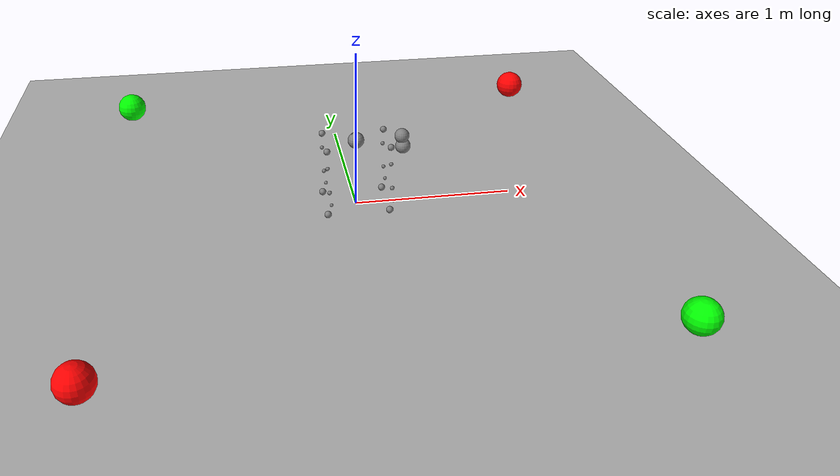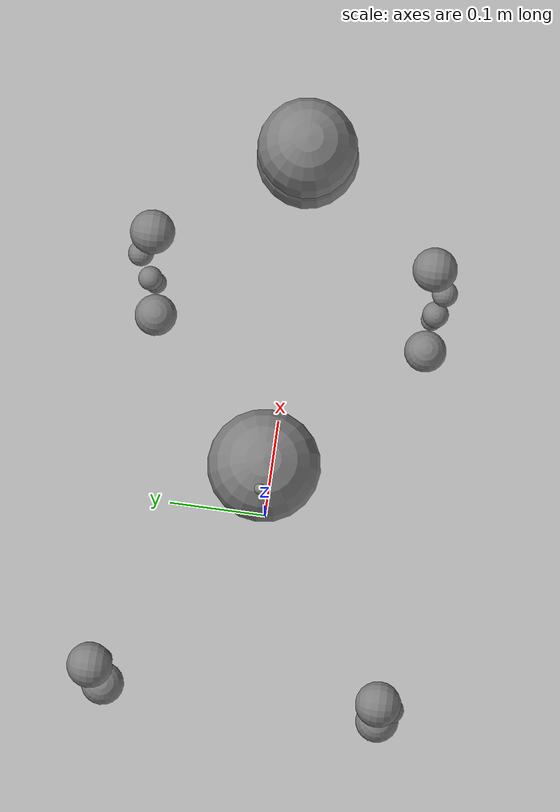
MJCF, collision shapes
<mujoco model="go2_reacher_environment">
  <compiler angle="radian" meshdir="xmls/assets" autolimits="true"/>

  <option cone="elliptic" impratio="100"/>

  <default>
    <default class="go2">
      <geom friction="0.6" margin="0.001" condim="1"/>
      <joint axis="0 1 0" damping="2" armature="0.01" frictionloss="0.2"/>
      <motor ctrlrange="-23.7 23.7"/>
      <default class="abduction">
        <joint axis="1 0 0" range="-1.0472 1.0472"/>
      </default>
      <default class="hip">
        <default class="front_hip">
          <joint range="-1.5708 3.4907"/>
        </default>
        <default class="back_hip">
          <joint range="-0.5236 4.5379"/>
        </default>
      </default>
      <default class="knee">
        <joint range="-2.7227 -0.83776"/>
        <motor ctrlrange="-45.43 45.43"/>
      </default>
      <default class="visual">
        <geom type="mesh" contype="0" conaffinity="0" group="2"/>
      </default>
      <default class="collision">
        <geom group="3"/>
        <default class="foot">
          <geom size="0.022" pos="-0.002 0 -0.213" priority="1" solimp="0.015 1 0.022" condim="6"
            friction="0.8 0.02 0.01"/>
        </default>
      </default>
    </default>
  </default>

  <asset>
    <material name="metal" rgba=".9 .95 .95 1"/>
    <material name="black" rgba="0 0 0 1"/>
    <material name="white" rgba="1 1 1 1"/>
    <material name="gray" rgba="0.671705 0.692426 0.774270 1"/>
    <material name="red_material" rgba="1 0 0 1"/>
    <material name="green_material" rgba="0 1 0 1"/>

    <texture type="skybox" builtin="gradient" width="512" height="512" rgb1=".4 .6 .8" rgb2="0 0 0"/>
    <texture name="texgeom" type="cube" builtin="flat" mark="cross" width="128" height="128" rgb1="0.6 0.6 0.6" rgb2="0.6 0.6 0.6" markrgb="1 1 1"/>
    <texture name="texplane" type="2d" builtin="checker" rgb1=".4 .4 .4" rgb2=".6 .6 .6" width="512" height="512"/>
    <material name="MatPlane" reflectance="0.3" texture="texplane" texrepeat="1 1" texuniform="true" rgba=".7 .7 .7 1"/>

    <!-- Mesh files are referenced from the go2.xml. In a real setup, these would need to be in the 'assets' directory -->
    <mesh file="base_0.obj"/>
    <mesh file="base_1.obj"/>
    <mesh file="base_2.obj"/>
    <mesh file="base_3.obj"/>
    <mesh file="base_4.obj"/>
    <mesh file="hip_0.obj"/>
    <mesh file="hip_1.obj"/>
    <mesh file="thigh_0.obj"/>
    <mesh file="thigh_1.obj"/>
    <mesh file="thigh_mirror_0.obj"/>
    <mesh file="thigh_mirror_1.obj"/>
    <mesh file="calf_0.obj"/>
    <mesh file="calf_1.obj"/>
    <mesh file="calf_mirror_0.obj"/>
    <mesh file="calf_mirror_1.obj"/>
    <mesh file="foot.obj"/>
  </asset>

  <worldbody>
    <light directional="true" diffuse=".8 .8 .8" pos="0 0 10" dir="0 0 -10"/>
    <geom name="floor" type="plane" size="3 3 .5" material="MatPlane" rgba=".7 .7 .7 1"/>

    <!-- Go2 Robot definition (copied from go2.xml) -->
    <body name="go2_base" pos="0 0 0.445" childclass="go2">
      <inertial pos="0.021112 0 -0.005366" quat="-0.000543471 0.713435 -0.00173769 0.700719" mass="6.921"
        diaginertia="0.107027 0.0980771 0.0244531"/>
      <freejoint/>
      <geom mesh="base_0" material="black" class="visual"/>
      <geom mesh="base_1" material="black" class="visual"/>
      <geom mesh="base_2" material="black" class="visual"/>
      <geom mesh="base_3" material="white" class="visual"/>
      <geom mesh="base_4" material="gray" class="visual"/>
      <!-- Changed collision types to sphere -->
      <geom size="0.05" type="sphere" class="collision"/> <!-- Original: box size="0.1881 0.04675 0.057" -->
      <geom size="0.045" pos="0.285 0 0.01" type="sphere" class="collision"/> <!-- Original: cylinder size="0.05 0.045" -->
      <geom size="0.047" pos="0.293 0 -0.06" class="collision"/>
      <site name="imu" pos="-0.02557 0 0.04232"/>
      <body name="FL_hip" pos="0.1934 0.0465 0">
        <inertial pos="-0.0054 0.00194 -0.000105" quat="0.497014 0.499245 0.505462 0.498237" mass="0.678"
          diaginertia="0.00088403 0.000596003 0.000479967"/>
        <joint name="FL_hip_joint" class="abduction"/>
        <geom mesh="hip_0" material="metal" class="visual"/>
        <geom mesh="hip_1" material="gray" class="visual"/>
        <geom size="0.02" pos="0 0.08 0" quat="1 1 0 0" type="sphere" class="collision"/> <!-- Original: cylinder size="0.046 0.02" -->
        <body name="FL_thigh" pos="0 0.0955 0">
          <inertial pos="-0.00374 -0.0223 -0.0327" quat="0.829533 0.0847635 -0.0200632 0.551623" mass="1.152"
            diaginertia="0.00594973 0.00584149 0.000878787"/>
          <joint name="FL_thigh_joint" class="front_hip"/>
          <geom mesh="thigh_0" material="metal" class="visual"/>
          <geom mesh="thigh_1" material="gray" class="visual"/>
          <geom size="0.012" pos="0 0 -0.1065" quat="0.707107 0 0.707107 0" type="sphere" class="collision"/> <!-- Original: box size="0.1065 0.01225 0.017" -->
          <body name="FL_calf" pos="0 0 -0.213">
            <inertial pos="0.00629595 -0.000622121 -0.141417" quat="0.710672 0.00154099 -0.00450087 0.703508"
              mass="0.241352" diaginertia="0.0014901 0.00146356 5.31397e-05"/>
            <joint name="FL_calf_joint" class="knee"/>
            <geom mesh="calf_0" material="gray" class="visual"/>
            <geom mesh="calf_1" material="black" class="visual"/>
            <geom size="0.012" pos="0.008 0 -0.06" quat="0.994493 0 -0.104807 0" type="sphere" class="collision"/> <!-- Original: cylinder size="0.012 0.06" -->
            <geom size="0.011" pos="0.02 0 -0.148" quat="0.999688 0 0.0249974 0" type="sphere" class="collision"/> <!-- Original: cylinder size="0.011 0.0325" -->
            <geom pos="0 0 -0.213" mesh="foot" class="visual" material="black"/>
            <geom name="FL" class="foot"/>
          </body>
        </body>
      </body>
      <body name="FR_hip" pos="0.1934 -0.0465 0">
        <inertial pos="-0.0054 -0.00194 -0.000105" quat="0.498237 0.505462 0.499245 0.497014" mass="0.678"
          diaginertia="0.00088403 0.000596003 0.000479967"/>
        <joint name="FR_hip_joint" class="abduction"/>
        <geom mesh="hip_0" material="metal" class="visual" quat="4.63268e-05 1 0 0"/>
        <geom mesh="hip_1" material="gray" class="visual" quat="4.63268e-05 1 0 0"/>
        <geom size="0.02" pos="0 -0.08 0" quat="0.707107 0.707107 0 0" type="sphere" class="collision"/> <!-- Original: cylinder size="0.046 0.02" -->
        <body name="FR_thigh" pos="0 -0.0955 0">
          <inertial pos="-0.00374 0.0223 -0.0327" quat="0.551623 -0.0200632 0.0847635 0.829533" mass="1.152"
            diaginertia="0.00594973 0.00584149 0.000878787"/>
          <joint name="FR_thigh_joint" class="front_hip"/>
          <geom mesh="thigh_mirror_0" material="metal" class="visual"/>
          <geom mesh="thigh_mirror_1" material="gray" class="visual"/>
          <geom size="0.012" pos="0 0 -0.1065" quat="0.707107 0 0.707107 0" type="sphere" class="collision"/> <!-- Original: box size="0.1065 0.01225 0.017" -->
          <body name="FR_calf" pos="0 0 -0.213">
            <inertial pos="0.00629595 0.000622121 -0.141417" quat="0.703508 -0.00450087 0.00154099 0.710672"
              mass="0.241352" diaginertia="0.0014901 0.00146356 5.31397e-05"/>
            <joint name="FR_calf_joint" class="knee"/>
            <geom mesh="calf_mirror_0" material="gray" class="visual"/>
            <geom mesh="calf_mirror_1" material="black" class="visual"/>
            <geom size="0.013" pos="0.01 0 -0.06" quat="0.995004 0 -0.0998334 0" type="sphere" class="collision"/> <!-- Original: cylinder size="0.013 0.06" -->
            <geom size="0.011" pos="0.02 0 -0.148" quat="0.999688 0 0.0249974 0" type="sphere" class="collision"/> <!-- Original: cylinder size="0.011 0.0325" -->
            <geom pos="0 0 -0.213" mesh="foot" class="visual" material="black"/>
            <geom name="FR" class="foot"/>
          </body>
        </body>
      </body>
      <body name="RL_hip" pos="-0.1934 0.0465 0">
        <inertial pos="0.0054 0.00194 -0.000105" quat="0.505462 0.498237 0.497014 0.499245" mass="0.678"
          diaginertia="0.00088403 0.000596003 0.000479967"/>
        <joint name="RL_hip_joint" class="abduction"/>
        <geom mesh="hip_0" material="metal" class="visual" quat="4.63268e-05 0 1 0"/>
        <geom mesh="hip_1" material="gray" class="visual" quat="4.63268e-05 0 1 0"/>
        <geom size="0.02" pos="0 0.08 0" quat="0.707107 0.707107 0 0" type="sphere" class="collision"/> <!-- Original: cylinder size="0.046 0.02" -->
        <body name="RL_thigh" pos="0 0.0955 0">
          <inertial pos="-0.00374 -0.0223 -0.0327" quat="0.829533 0.0847635 -0.0200632 0.551623" mass="1.152"
            diaginertia="0.00594973 0.00584149 0.000878787"/>
          <joint name="RL_thigh_joint" class="back_hip"/>
          <geom mesh="thigh_0" material="metal" class="visual"/>
          <geom mesh="thigh_1" material="gray" class="visual"/>
          <geom size="0.012" pos="0 0 -0.1065" quat="0.707107 0 0.707107 0" type="sphere" class="collision"/> <!-- Original: box size="0.1065 0.01225 0.017" -->
          <body name="RL_calf" pos="0 0 -0.213">
            <inertial pos="0.00629595 -0.000622121 -0.141417" quat="0.710672 0.00154099 -0.00450087 0.703508"
              mass="0.241352" diaginertia="0.0014901 0.00146356 5.31397e-05"/>
            <joint name="RL_calf_joint" class="knee"/>
            <geom mesh="calf_0" material="gray" class="visual"/>
            <geom mesh="calf_1" material="black" class="visual"/>
            <geom size="0.013" pos="0.01 0 -0.06" quat="0.995004 0 -0.0998334 0" type="sphere" class="collision"/> <!-- Original: cylinder size="0.013 0.06" -->
            <geom size="0.011" pos="0.02 0 -0.148" quat="0.999688 0 0.0249974 0" type="sphere" class="collision"/> <!-- Original: cylinder size="0.011 0.0325" -->
            <geom pos="0 0 -0.213" mesh="foot" class="visual" material="black"/>
            <geom name="RL" class="foot"/>
          </body>
        </body>
      </body>
      <body name="RR_hip" pos="-0.1934 -0.0465 0">
        <inertial pos="0.0054 -0.00194 -0.000105" quat="0.499245 0.497014 0.498237 0.505462" mass="0.678"
          diaginertia="0.00088403 0.000596003 0.000479967"/>
        <joint name="RR_hip_joint" class="abduction"/>
        <geom mesh="hip_0" material="metal" class="visual" quat="2.14617e-09 4.63268e-05 4.63268e-05 -1"/>
        <geom mesh="hip_1" material="gray" class="visual" quat="2.14617e-09 4.63268e-05 4.63268e-05 -1"/>
        <geom size="0.02" pos="0 -0.08 0" quat="0.707107 0.707107 0 0" type="sphere" class="collision"/> <!-- Original: cylinder size="0.046 0.02" -->
        <body name="RR_thigh" pos="0 -0.0955 0">
          <inertial pos="-0.00374 0.0223 -0.0327" quat="0.551623 -0.0200632 0.0847635 0.829533" mass="1.152"
            diaginertia="0.00594973 0.00584149 0.000878787"/>
          <joint name="RR_thigh_joint" class="back_hip"/>
          <geom mesh="thigh_mirror_0" material="metal" class="visual"/>
          <geom mesh="thigh_mirror_1" material="gray" class="visual"/>
          <geom size="0.012" pos="0 0 -0.1065" quat="0.707107 0 0.707107 0" type="sphere" class="collision"/> <!-- Original: box size="0.1065 0.01225 0.017" -->
          <body name="RR_calf" pos="0 0 -0.213">
            <inertial pos="0.00629595 0.000622121 -0.141417" quat="0.703508 -0.00450087 0.00154099 0.710672"
              mass="0.241352" diaginertia="0.0014901 0.00146356 5.31397e-05"/>
            <joint name="RR_calf_joint" class="knee"/>
            <geom mesh="calf_mirror_0" material="gray" class="visual"/>
            <geom mesh="calf_mirror_1" material="black" class="visual"/>
            <geom size="0.013" pos="0.01 0 -0.06" quat="0.995004 0 -0.0998334 0" type="sphere" class="collision"/> <!-- Original: cylinder size="0.013 0.06" -->
            <geom size="0.011" pos="0.02 0 -0.148" quat="0.999688 0 0.0249974 0" type="sphere" class="collision"/> <!-- Original: cylinder size="0.011 0.0325" -->
            <geom pos="0 0 -0.213" mesh="foot" class="visual" material="black"/>
            <geom name="RR" class="foot"/>
          </body>
        </body>
      </body>
    </body>

    <!-- Red Objects (Reward) -->
    <body name="red_object_1" pos="1.5 1.5 0.1">
      <geom name="red_sphere_1" type="sphere" size="0.1" material="red_material"/>
    </body>
    <body name="red_object_2" pos="-1.5 -1.5 0.1">
      <geom name="red_box_1" type="sphere" size="0.1" material="red_material"/> <!-- Changed type to sphere -->
    </body>

    <!-- Green Objects (Penalty) -->
    <body name="green_object_1" pos="1.5 -1.5 0.1">
      <geom name="green_sphere_1" type="sphere" size="0.1" material="green_material"/>
    </body>
    <body name="green_object_2" pos="-1.5 1.5 0.1">
      <geom name="green_box_1" type="sphere" size="0.1" material="green_material"/> <!-- Changed type to sphere -->
    </body>

  </worldbody>

  <actuator>
    <motor class="abduction" name="FL_hip" joint="FL_hip_joint"/>
    <motor class="hip" name="FL_thigh" joint="FL_thigh_joint"/>
    <motor class="knee" name="FL_calf" joint="FL_calf_joint"/>
    <motor class="abduction" name="FR_hip" joint="FR_hip_joint"/>
    <motor class="hip" name="FR_thigh" joint="FR_thigh_joint"/>
    <motor class="knee" name="FR_calf" joint="FR_calf_joint"/>
    <motor class="abduction" name="RL_hip" joint="RL_hip_joint"/>
    <motor class="hip" name="RL_thigh" joint="RL_thigh_joint"/>
    <motor class="knee" name="RL_calf" joint="RL_calf_joint"/>
    <motor class="abduction" name="RR_hip" joint="RR_hip_joint"/>
    <motor class="hip" name="RR_thigh" joint="RR_thigh_joint"/>
    <motor class="knee" name="RR_calf" joint="RR_calf_joint"/>
  </actuator>

  <keyframe>
    <key name="home" qpos="0 0 0.27 1 0 0 0 0 0.9 -1.8 0 0.9 -1.8 0 0.9 -1.8 0 0.9 -1.8"
      ctrl="0 0.9 -1.8 0 0.9 -1.8 0 0.9 -1.8 0 0.9 -1.8"/>
  </keyframe>
</mujoco>
